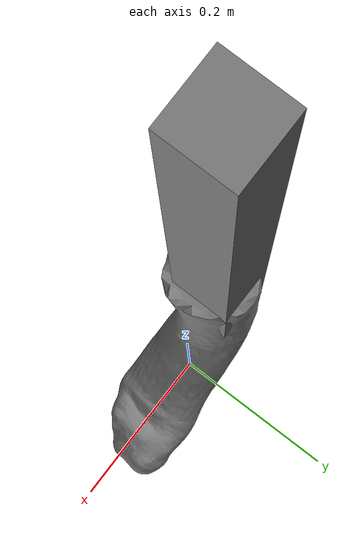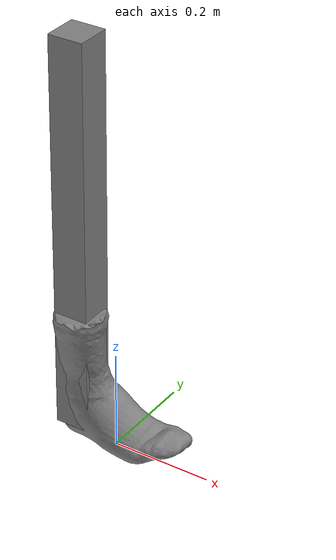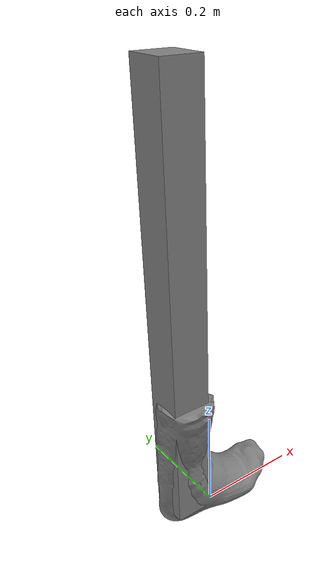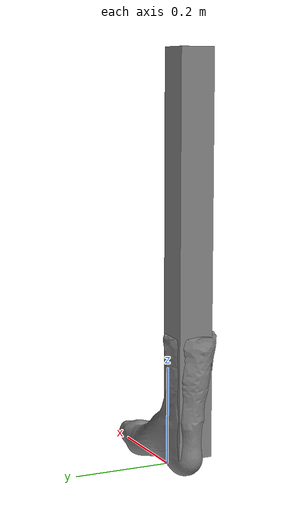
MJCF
<mujoco>
  <asset>
    <mesh file="RightFoot.stl" />
    <model name="skeleton"
      file="/home/or/oshoe/myoconverter-main/models/mjc/Gait2354Simbody/gait2354_cvt3.xml" />
    <texture type="skybox" builtin="gradient" rgb1=".3 .5 .7" rgb2="0 0 0" width="32" height="512" />
    <texture name="body" type="cube" builtin="flat" mark="cross" width="128" height="128"
      rgb1="0.8 0.6 0.4" rgb2="0.8 0.6 0.4" markrgb="1 1 1" />
    <material name="body" texture="body" texuniform="true" rgba="0.8 0.6 .4 1" />
    <texture name="grid" type="2d" builtin="checker" width="512" height="512" rgb1=".1 .2 .3"
      rgb2=".2 .3 .4" />
    <material name="grid" texture="grid" texrepeat="1 1" texuniform="true" reflectance=".2" />
  </asset>

  <worldbody>
    <light name="top" pos="0 0 1" />
    <body name="right_leg" euler="0 0 180">
      <joint name="swing" type="hinge" axis="0 1 0" pos=".07 .01 .88" ref="90" armature="3" range="6.28 0"/>
      <geom name="calf" type="box" size=".035 .035 .40" pos=".07 .01 .44" />
      <geom type="mesh" name="RightFoot" mesh="RightFoot" quat=".5 0 0  .5" />
    </body>
  </worldbody>
</mujoco>
